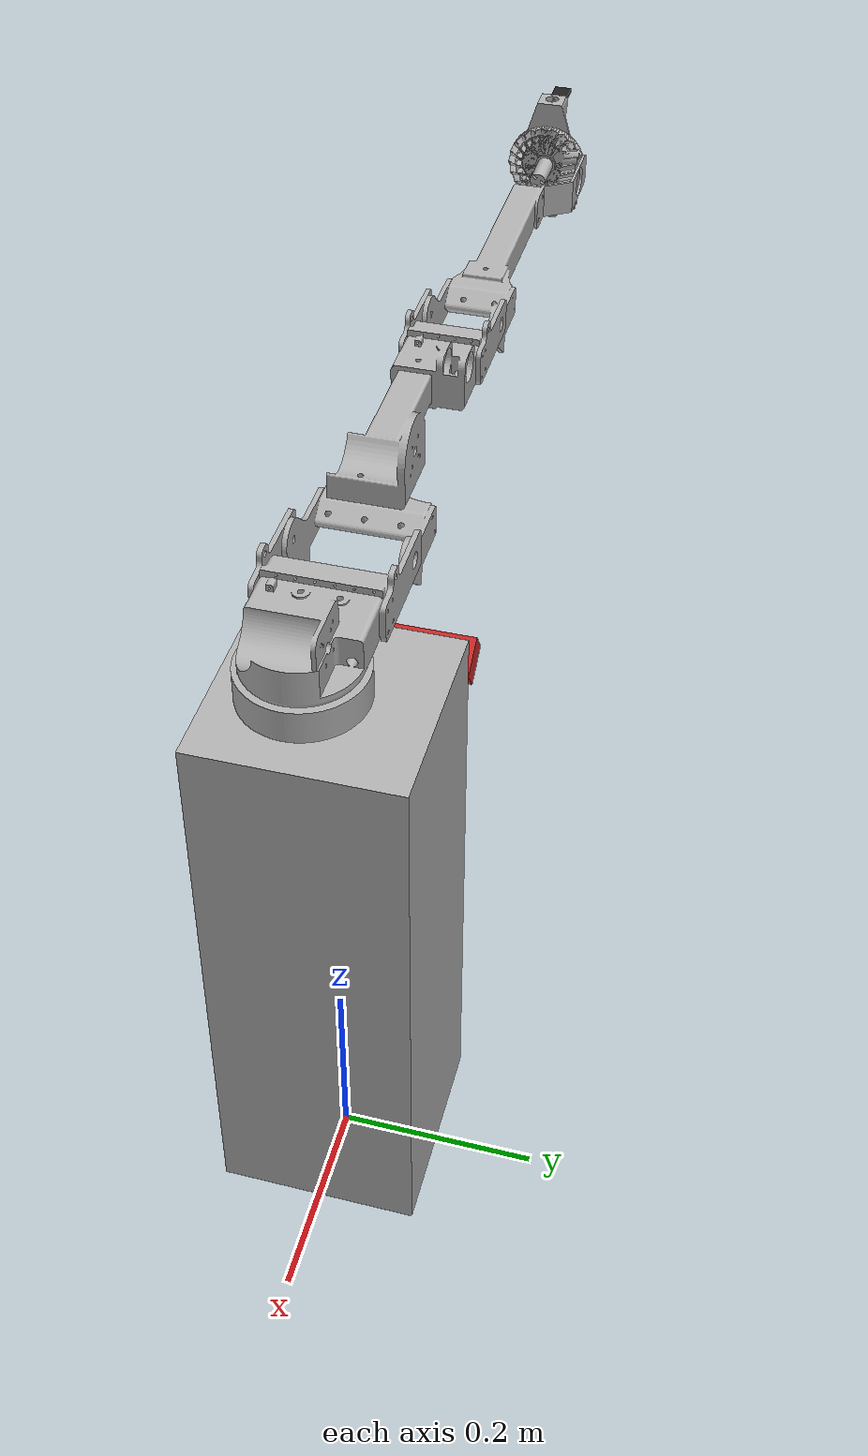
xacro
<?xml version="1.0"?>
<robot xmlns:xacro="http://www.ros.org/wiki/xacro" name="ARM">
    <xacro:arg name="initial_positions_file" default="initial_positions.yaml" />

    <!-- Import ARM urdf file -->
    <xacro:include filename="$(find arm_description)/urdf/ARM.urdf.xacro" />

    <!-- Import control_xacro -->
    <xacro:include filename="ARM.ros2_control.xacro" />

</robot>

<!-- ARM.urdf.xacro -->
<robot name="ARM" xmlns:xacro="http://www.ros.org/wiki/xacro">

<xacro:arg name="sim_gazebo" default="true"/>
<xacro:arg name="simulation_controllers" default="$(find arm_description)/launch/controller.yaml"/>
<xacro:arg name="sim_ignition" default="false"/>
<xacro:arg name="tf_prefix" default=""/>

<xacro:include filename="$(find arm_description)/urdf/materials.xacro" />
<xacro:include filename="$(find arm_description)/urdf/ARM.gazebo" />
<link name="base_link">
  <inertial>
    <origin xyz="0.011548124790208178 -0.06675666357503725 0.016860013348185907" rpy="0 0 0"/>
    <mass value="1.617520070371658"/>
    <inertia ixx="0.001877" iyy="0.003554" izz="0.001877" ixy="0.0" iyz="0.0" ixz="-0.0"/>
  </inertial>
  <visual>
    <origin xyz="0 0 0" rpy="1.5708 0 0"/>
    <geometry>
      <mesh filename="file://$(find arm_description)/meshes/base_link.stl" scale="0.001 0.001 0.001"/>
    </geometry>
    <material name="silver"/>
  </visual>
  <collision>
    <origin xyz="0 0 0" rpy="1.5708 0 0"/>
    <geometry>
      <mesh filename="file://$(find arm_description)/meshes/base_link.stl" scale="0.001 0.001 0.001"/>
    </geometry>
  </collision>
  <!-- Stabilizing base plate -->
  <collision>
    <origin xyz="0 0 -0.39" rpy="0 0 0"/>
    <geometry>
      <box size="0.2 0.2 0.61"/>
    </geometry>
  </collision>

  <visual>
    <origin xyz="0 0 -0.39" rpy="0 0 0"/>
    <geometry>
      <box size="0.2 0.2 0.61"/>
    </geometry>
    <material name="silver"/>
  </visual>
</link>

<link name="world"/>

<joint name="world_joint" type="fixed">
  <parent link="world"/>
  <child link="base_link"/>
  <origin xyz="0 0 0.7" rpy="0 0 0"/>
</joint>

<link name="J1In_v1_1">
  <inertial>
    <origin xyz="-0.03830458612577855 0.01909902865552605 -0.0009002990425162304" rpy="0 0 0"/>
    <mass value="3.7192523773111"/>
    <inertia ixx="0.005026" iyy="0.010497" izz="0.006726" ixy="0.000275" iyz="0.000102" ixz="0.000273"/>
  </inertial>
  <visual>
    <origin xyz="-0.011548 0.044828 -0.01686" rpy="1.5708 0 0"/>
    <geometry>
      <mesh filename="file://$(find arm_description)/meshes/J1In_v1_1.stl" scale="0.001 0.001 0.001"/>
    </geometry>
    <material name="silver"/>
  </visual>
  <collision>
    <origin xyz="-0.011548 0.044828 -0.01686" rpy="1.5708 0 0"/>
    <geometry>
      <mesh filename="file://$(find arm_description)/meshes/J1In_v1_1.stl" scale="0.001 0.001 0.001"/>
    </geometry>
  </collision>
</link>

<link name="Plate1_v1_1">
  <inertial>
    <origin xyz="-0.21635189784504516 -0.017435171704568184 0.061149823556132965" rpy="0 0 0"/>
    <mass value="4.819221392235697"/>
    <inertia ixx="0.005726" iyy="0.091947" izz="0.089509" ixy="-0.002855" iyz="0.000429" ixz="0.002383"/>
  </inertial>
  <visual>
    <origin xyz="0.124452 0.024828 0.03914" rpy="1.5708 0 0"/>
    <geometry>
      <mesh filename="file://$(find arm_description)/meshes/Plate1_v1_1.stl" scale="0.001 0.001 0.001"/>
    </geometry>
    <material name="silver"/>
  </visual>
  <collision>
    <origin xyz="0.124452 0.024828 0.03914" rpy="1.5708 0 0"/>
    <geometry>
      <mesh filename="file://$(find arm_description)/meshes/Plate1_v1_1.stl" scale="0.001 0.001 0.001"/>
    </geometry>
  </collision>
</link>

<link name="J2Out_v1_1">
  <inertial>
    <origin xyz="-0.11650839175425809 -0.02177605587074638 0.03563892022345992" rpy="0 0 0"/>
    <mass value="1.4975943327836068"/>
    <inertia ixx="0.00122" iyy="0.014253" izz="0.013542" ixy="-0.000229" iyz="-6e-06" ixz="-0.001081"/>
  </inertial>
  <visual>
    <origin xyz="0.56393 0.047859 0.01384" rpy="1.5708 0 0"/>
    <geometry>
      <mesh filename="file://$(find arm_description)/meshes/J2Out_v1_1.stl" scale="0.001 0.001 0.001"/>
    </geometry>
    <material name="silver"/>
  </visual>
  <collision>
    <origin xyz="0.56393 0.047859 0.01384" rpy="1.5708 0 0"/>
    <geometry>
      <mesh filename="file://$(find arm_description)/meshes/J2Out_v1_1.stl" scale="0.001 0.001 0.001"/>
    </geometry>
  </collision>
</link>

<link name="Small_Light_-_Spiral_Face_3.2M_20T_v1_1">
  <inertial>
    <origin xyz="-0.020047006397060585 4.899792152388005e-06 0.02825687380923673" rpy="0 0 0"/>
    <mass value="0.8217473320476296"/>
    <inertia ixx="0.000918" iyy="0.000962" izz="0.000753" ixy="0.0" iyz="0.0" ixz="0.000298"/>
  </inertial>
  <visual>
    <origin xyz="0.948234 0.07089 0.02354" rpy="1.5708 0 0"/>
    <geometry>
      <mesh filename="file://$(find arm_description)/meshes/Small_Light_-_Spiral_Face_3.2M_20T_v1_1.stl" scale="0.001 0.001 0.001"/>
    </geometry>
    <material name="silver"/>
  </visual>
  <collision>
    <origin xyz="0.948234 0.07089 0.02354" rpy="1.5708 0 0"/>
    <geometry>
      <mesh filename="file://$(find arm_description)/meshes/Small_Light_-_Spiral_Face_3.2M_20T_v1_1.stl" scale="0.001 0.001 0.001"/>
    </geometry>
  </collision>
</link>

<link name="Grabber_Base_v1_1">
  <inertial>
    <origin xyz="0.0006514613431334304 2.3945116182644277e-06 0.003320707496539399" rpy="0 0 0"/>
    <mass value="0.984291589500133"/>
    <inertia ixx="0.00148" iyy="0.000585" izz="0.001318" ixy="0.0" iyz="-0.0" ixz="5.3e-05"/>
  </inertial>
  <visual>
    <origin xyz="0.990634 0.07089 -0.02276" rpy="1.5708 0 0"/>
    <geometry>
      <mesh filename="file://$(find arm_description)/meshes/Grabber_Base_v1_1.stl" scale="0.001 0.001 0.001"/>
    </geometry>
    <material name="silver"/>
  </visual>
  <collision>
    <origin xyz="0.990634 0.07089 -0.02276" rpy="1.5708 0 0"/>
    <geometry>
      <mesh filename="file://$(find arm_description)/meshes/Grabber_Base_v1_1.stl" scale="0.001 0.001 0.001"/>
    </geometry>
  </collision>
</link>

<!-- Two-Finger Gripper -->

<!-- Left finger -->
<link name="left_prong">
  <inertial>
    <origin xyz="0 0 0" rpy="0 0 0"/>
    <mass value="0.05"/>
    <inertia ixx="0.00001" iyy="0.00001" izz="0.00001" ixy="0.0" ixz="0.0" iyz="0.0"/>
  </inertial>
  <visual>
    <origin xyz="-0.05 0.05 -0.035" rpy="0 0 0"/>
    <geometry><box size="0.05 0.02 0.005"/></geometry>
    <material name="black"/>
  </visual>
  <collision>
    <origin xyz="-0.05 0.05 -0.035" rpy="0 0 0"/>
    <geometry><box size="0.05 0.02 0.005"/></geometry>
  </collision>
</link>

<!-- Right finger -->
<link name="right_prong">
  <inertial>
    <origin xyz="0 0 0" rpy="0 0 0"/>
    <mass value="0.05"/>
    <inertia ixx="0.00001" iyy="0.00001" izz="0.00001" ixy="0.0" ixz="0.0" iyz="0.0"/>
  </inertial>

  <visual>
    <origin xyz="-0.05 0.05 -0.18" rpy="0 0 0"/>
    <geometry><box size="0.05 0.02 0.005"/></geometry>
    <material name="black"/>
  </visual>
  <collision>
    <origin xyz="-0.05 0.05 -0.18" rpy="0 0 0"/>
    <geometry><box size="0.05 0.02 0.005"/></geometry>
  </collision>
</link>

<!-- Left prong joint (fake motor joint driving open/close) -->
<joint name="gripper_open_joint" type="prismatic">
  <parent link="Grabber_Base_v1_1"/>
  <child link="left_prong"/>
  <origin xyz="0 0 0.003" rpy="0 0 0"/>
  <axis xyz="0 0 -1"/>
  <limit effort="5.0" lower="0.0" upper="0.05" velocity="1"/>
</joint>

<!-- Right prong mimics left -->
<joint name="gripper_right_joint" type="prismatic">
  <parent link="Grabber_Base_v1_1"/>
  <child link="right_prong"/>
  <origin xyz="0 0 0.03" rpy="0 0 0"/>
  <axis xyz="0 0 1"/>
  <limit lower="-0.0" upper="0.05" effort="5.0" velocity="1"/>
</joint>

<!-- Camera Optical Link (usually for depth sensing and camera frame) -->
<link name="camera_optical_link"/>

<!-- Generic Camera Link -->
<link name="camera_link">
  <inertial>
    <origin xyz="0 0 0" rpy="0 0 0"/>
    <mass value="0.2"/>
    <inertia ixx="0.0001" ixy="0.0" ixz="0.0" iyy="0.0001" iyz="0.0" izz="0.0001"/>
  </inertial>
  <visual>
    <geometry>
        <!-- Simple Box geometry representing the camera -->
        <box size="0.03 0.04 0.175"/> <!-- Adjust dimensions as needed -->
    </geometry>
    <material name="red"/>
  </visual>
  <collision>
    <geometry>
        <box size="0.03 0.04 0.175"/> <!-- Adjust dimensions as needed -->
    </geometry>
  </collision>
</link>

<!-- Camera Joint to connect it to the base -->
<joint name="camera_joint" type="fixed">
    <parent link="base_link"/>
    <child link="camera_link"/>
    <origin xyz="-0.2 -0.005 -0.2" rpy="1.57 2.17 0" />
</joint>

<!-- Joint for optical frame -->
<joint name="camera_optical_joint" type="fixed">
    <parent link="camera_link"/>
    <child link="camera_optical_link"/>
    <origin xyz="0 0 0" rpy="-1.57 0 -1.57" />
</joint>

<joint name="revolute_1" type="continuous">
  <origin xyz="0.011548 -0.044828 0.01686" rpy="0 0 0"/>
  <parent link="base_link"/>
  <child link="J1In_v1_1"/>
  <axis xyz="0.0 0.0 1.0"/>
</joint>

<joint name="revolute_8" type="continuous">
  <origin xyz="-0.136 0.02 -0.056" rpy="0 0 0"/>
  <parent link="J1In_v1_1"/>
  <child link="Plate1_v1_1"/>
  <axis xyz="0.0 1.0 0.0"/>
</joint>

<joint name="revolute_9" type="continuous">
  <origin xyz="-0.439478 -0.023031 0.0253" rpy="0 0 0"/>
  <parent link="Plate1_v1_1"/>
  <child link="J2Out_v1_1"/>
  <axis xyz="-0.0 1.0 0.0"/>
</joint>

<joint name="revolute_10" type="continuous">
  <origin xyz="-0.384304 -0.023031 -0.0097" rpy="0 0 0"/>
  <parent link="J2Out_v1_1"/>
  <child link="Small_Light_-_Spiral_Face_3.2M_20T_v1_1"/>
  <axis xyz="0.0 1.0 0.0"/>
  <dynamics damping="5.0" friction="1.0"/>
</joint>

<joint name="revolute_11" type="continuous">
  <origin xyz="-0.0424 0.0 0.0463" rpy="0 0 0"/>
  <parent link="Small_Light_-_Spiral_Face_3.2M_20T_v1_1"/>
  <child link="Grabber_Base_v1_1"/>
  <axis xyz="1.0 0.0 0.0"/>
</joint>

<ros2_control name="ARMSystem" type="system">
  <hardware>
    <plugin>arm_hardware/ArmHardware</plugin>
  </hardware>

  <joint name="revolute_1">
    <command_interface name="position"/>
    <state_interface name="position"/>
    <state_interface name="velocity"/>
  </joint>

  <joint name="revolute_8">
    <command_interface name="position"/>
    <state_interface name="position"/>
    <state_interface name="velocity"/>
  </joint>

  <joint name="revolute_9">
    <command_interface name="position"/>
    <state_interface name="position"/>
    <state_interface name="velocity"/>
  </joint>

  <joint name="revolute_10">
    <command_interface name="position"/>
    <state_interface name="position"/>
    <state_interface name="velocity"/>

  </joint>

  <joint name="revolute_11">
    <command_interface name="position"/>
    <state_interface name="position"/>
    <state_interface name="velocity"/>

  </joint>

  <joint name="gripper_open_joint">
    <command_interface name="position"/>
    <state_interface name="position"/>
    <state_interface name="velocity"/>
  </joint>

  <joint name="gripper_right_joint">
    <command_interface name="position"/>
    <state_interface name="position"/>
    <state_interface name="velocity"/>
  </joint>

</ros2_control>

</robot>

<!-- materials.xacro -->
<robot name="ARM" xmlns:xacro="http://www.ros.org/wiki/xacro" >

<material name="silver">
  <color rgba="0.700 0.700 0.700 1.000"/>
</material>

</robot>

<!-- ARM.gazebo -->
<robot name="ARM" xmlns:xacro="http://www.ros.org/wiki/xacro" >

<xacro:property name="body_color" value="Gazebo/Silver" />

<xacro:if value="$(arg sim_gazebo)">
  <gazebo>
    <plugin name="gazebo_ros2_control" filename="libgazebo_ros2_control.so">
      <parameters>$(arg simulation_controllers)</parameters>
    </plugin>
  </gazebo>
</xacro:if>

<gazebo reference="base_link">
  <material>${body_color}</material>
  <mu1>0.2</mu1>
  <mu2>0.2</mu2>
  <selfCollide>true</selfCollide>
  <gravity>true</gravity>
</gazebo>

<gazebo reference="J1In_v1_1">
  <material>${body_color}</material>
  <mu1>0.2</mu1>
  <mu2>0.2</mu2>
  <selfCollide>true</selfCollide>
</gazebo>

<gazebo reference="Plate1_v1_1">
  <material>${body_color}</material>
  <mu1>0.2</mu1>
  <mu2>0.2</mu2>
  <selfCollide>true</selfCollide>
</gazebo>

<gazebo reference="J2Out_v1_1">
  <material>${body_color}</material>
  <mu1>0.2</mu1>
  <mu2>0.2</mu2>
  <selfCollide>true</selfCollide>
</gazebo>

<gazebo reference="Small_Light_-_Spiral_Face_3.2M_20T_v1_1">
  <material>${body_color}</material>
  <mu1>0.2</mu1>
  <mu2>0.2</mu2>
  <selfCollide>true</selfCollide>
</gazebo>

<gazebo reference="Grabber_Base_v1_1">
  <material>${body_color}</material>
  <mu1>0.2</mu1>
  <mu2>0.2</mu2>
  <selfCollide>true</selfCollide>
</gazebo>

<gazebo reference="camera_link">
    <visual>
        <geometry>
            <mesh filename="file://$(find arm_description)/cam_files/kinetic.stl"/> <!-- You can replace or remove this if not needed -->
        </geometry>
        <material>Gazebo/Red</material>
    </visual>
    <sensor name="camera" type="depth">
        <pose>0 0 0 0 0 0</pose>
        <visualize>true</visualize>
        <update_rate>10</update_rate>
        <camera>
            <horizontal_fov>1.5708</horizontal_fov> <!-- Adjust field of view if needed -->
            <image>
                <format>R8G8B8</format>
                <width>1280</width>
                <height>720</height>
            </image>
            <clip>
                <near>0.03</near>
                <far>20</far>
            </clip>
        </camera>
        <plugin name="camera_controller" filename="libgazebo_ros_camera.so">
            <frame_name>camera_optical_link</frame_name>
        </plugin>
    </sensor>
</gazebo>

</robot>
